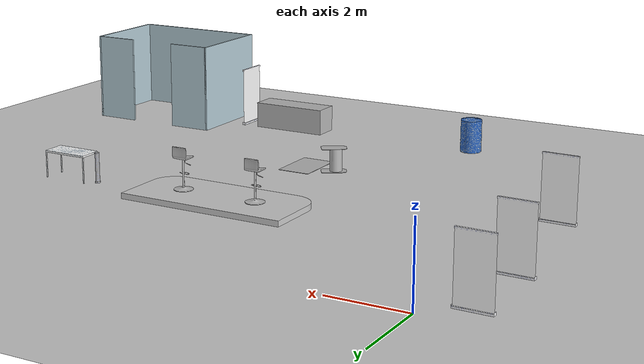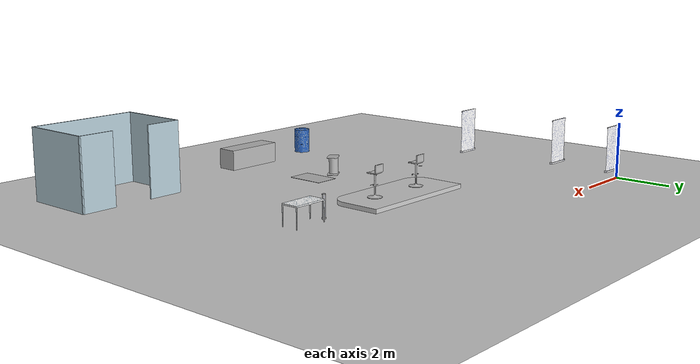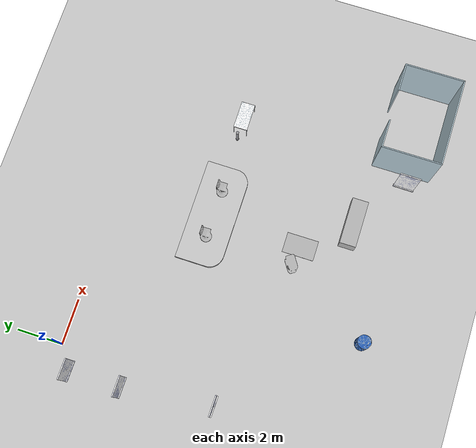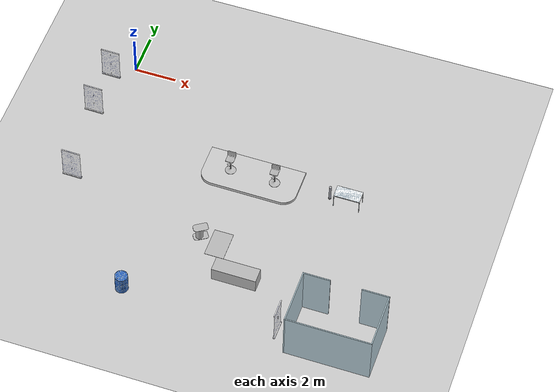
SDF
<sdf version="1.7">
 <world name="default">
  <model name="ground_plane">
   <static>1</static>
   <link name="link">
    <collision name="collision">
     <geometry><plane><normal>0 0 1</normal><size>100 100</size></plane></geometry>
     <surface>
      <contact><collide_bitmask>65535</collide_bitmask></contact>
      <friction><ode><mu>100</mu><mu2>50</mu2></ode></friction>
     </surface>
    </collision>
    <visual name="visual">
     <cast_shadows>0</cast_shadows>
     <geometry><plane><normal>0 0 1</normal><size>100 100</size></plane></geometry>
     <material>
      <script><uri>file://media/materials/scripts/gazebo.material</uri><name>Gazebo/Grey</name></script>
     </material>
    </visual>
   </link>
  </model>
  <model name="plate_9">
   <static>1</static>
   <link name="link">
    <collision name="collision"><geometry><box><size>0.0 0.0 0.0</size></box></geometry></collision>
    <visual name="visual">
     <geometry><box><size>0.9 1.4 0.01</size></box></geometry>
     <material>
      <lighting>1</lighting>
      <script>
       <uri>model://plate_8/materials/scripts</uri>
       <uri>model://plate_8/materials/textures</uri>
       <name>plateby</name>
      </script>
     </material>
    </visual>
   </link>
   <pose>7.1 -8.35 0 0 -0 0</pose>
  </model>
  <model name="LogCam1">
   <link name="link">
    <sensor name="logical_camera" type="logical_camera">
     <logical_camera>
      <near>0.55</near>
      <far>2.5</far>
      <horizontal_fov>1.05</horizontal_fov>
      <aspect_ratio>1.8</aspect_ratio>
     </logical_camera>
     <visualize>1</visualize>
     <always_on>1</always_on>
     <update_rate>10</update_rate>
    </sensor>
   </link>
   <static>1</static>
   <pose>7.11 -10 0.2 0 -0 1.570335</pose>
  </model>
  <model name="banner_0_clone_clone">
   <static>1</static>
   <link name="link">
    <collision name="collision">
     <geometry><mesh><scale>1 1.5 1</scale><uri>model://banner/meshes/banner.dae</uri></mesh></geometry>
    </collision>
    <visual name="visual">
     <geometry><mesh><scale>1 1.5 1</scale><uri>model://banner/meshes/banner.dae</uri></mesh></geometry>
     <material>
      <script>
       <uri>model://banner/materials/scripts</uri>
       <uri>model://banner/materials/textures</uri>
       <name>FlipChart/Diffuse</name>
      </script>
     </material>
    </visual>
   </link>
   <pose>0.462758 -7.43082 0 0 -0 1.55209</pose>
  </model>
  <model name="whitetablesmall_1_clone_0">
   <static>1</static>
   <link name="link">
    <collision name="collision">
     <geometry>
      <mesh><scale>0.5 0.5 0.9</scale><uri>model://whitetablesmall/meshes/whitetable.dae</uri></mesh>
     </geometry>
    </collision>
    <visual name="visual">
     <geometry>
      <mesh><scale>0.5 0.5 0.9</scale><uri>model://whitetablesmall/meshes/whitetable.dae</uri></mesh>
     </geometry>
     <material>
      <script>
       <uri>model://flipchart/materials/scripts</uri>
       <uri>model://flipchart/materials/textures</uri>
       <name>FlipChart/Diffuse</name>
      </script>
     </material>
    </visual>
   </link>
   <pose>11.8 -4.3 0 0 -0 1.57294</pose>
  </model>
  <model name="banner_0_clone_clone_clone">
   <static>1</static>
   <link name="link">
    <collision name="collision">
     <geometry><mesh><scale>1 1.5 1</scale><uri>model://banner/meshes/banner.dae</uri></mesh></geometry>
    </collision>
    <visual name="visual">
     <geometry><mesh><scale>1 1.5 1</scale><uri>model://banner/meshes/banner.dae</uri></mesh></geometry>
     <material>
      <script>
       <uri>model://banner/materials/scripts</uri>
       <uri>model://banner/materials/textures</uri>
       <name>FlipChart/Diffuse</name>
      </script>
     </material>
    </visual>
   </link>
   <pose>0.026844 -3.53741 0 0 -0 1.55209</pose>
  </model>
  <model name="banner_0_clone_clone_clone_1">
   <static>1</static>
   <link name="link">
    <collision name="collision">
     <geometry><mesh><scale>1 1.5 1</scale><uri>model://banner/meshes/banner.dae</uri></mesh></geometry>
    </collision>
    <visual name="visual">
     <geometry><mesh><scale>1 1.5 1</scale><uri>model://banner/meshes/banner.dae</uri></mesh></geometry>
     <material>
      <script>
       <uri>model://banner/materials/scripts</uri>
       <uri>model://banner/materials/textures</uri>
       <name>FlipChart/Diffuse</name>
      </script>
     </material>
    </visual>
   </link>
   <pose>0.003173 -1.24572 0 0 -0 1.55209</pose>
  </model>
  <model name="barboden">
   <static>1</static>
   <link name="link">
    <collision name="collision">
     <geometry><mesh><scale>1.1 1 1</scale><uri>model://barboden/meshes/barboden.dae</uri></mesh></geometry>
    </collision>
    <visual name="visual">
     <geometry><mesh><scale>1.1 1 1</scale><uri>model://barboden/meshes/barboden.dae</uri></mesh></geometry>
    </visual>
   </link>
   <pose>7.26674 -4.33489 0 0 -0 3.13614</pose>
  </model>
  <model name="barchair">
   <static>1</static>
   <link name="link">
    <collision name="collision">
     <geometry><mesh><scale>1 1 1</scale><uri>model://barchair/meshes/barchair.dae</uri></mesh></geometry>
    </collision>
    <visual name="visual">
     <geometry><mesh><scale>1 1 1</scale><uri>model://barchair/meshes/barchair.dae</uri></mesh></geometry>
     <material>
      <script>
       <uri>model://flipchart/materials/scripts</uri>
       <uri>model://flipchart/materials/textures</uri>
       <name>FlipChart/Diffuse</name>
      </script>
     </material>
    </visual>
   </link>
   <pose>6.24772 -4.32501 0.169593 0 -0 0</pose>
  </model>
  <model name="barchair_clone">
   <static>1</static>
   <link name="link">
    <collision name="collision">
     <geometry><mesh><scale>1 1 1</scale><uri>model://barchair/meshes/barchair.dae</uri></mesh></geometry>
    </collision>
    <visual name="visual">
     <geometry><mesh><scale>1 1 1</scale><uri>model://barchair/meshes/barchair.dae</uri></mesh></geometry>
     <material>
      <script>
       <uri>model://flipchart/materials/scripts</uri>
       <uri>model://flipchart/materials/textures</uri>
       <name>FlipChart/Diffuse</name>
      </script>
     </material>
    </visual>
   </link>
   <pose>8.37245 -4.37397 0.169593 0 -0 0</pose>
  </model>
  <model name="pillar_clone">
   <static>1</static>
   <link name="link">
    <collision name="collision">
     <geometry><mesh><scale>0.3 0.3 0.16</scale><uri>model://pillar/meshes/pillar.dae</uri></mesh></geometry>
    </collision>
    <visual name="visual">
     <geometry><mesh><scale>0.3 0.3 0.16</scale><uri>model://pillar/meshes/pillar.dae</uri></mesh></geometry>
    </visual>
   </link>
   <pose>10.9097 -4.31342 0 0 -0 0</pose>
  </model>
  <model name="IGM_Zelle">
   <pose>13.551 -11.602 0 0 -0 0</pose>
   <link name="Wall_11">
    <collision name="Wall_11_Collision">
     <geometry><box><size>1.25 0.05 2.5</size></box></geometry>
     <pose>0 0 1.25 0 -0 0</pose>
    </collision>
    <visual name="Wall_11_Visual">
     <pose>0 0 1.25 0 -0 0</pose>
     <geometry><box><size>1.25 0.05 2.5</size></box></geometry>
     <material>
      <script><uri>file://media/materials/scripts/gazebo.material</uri><name>Gazebo/Grey</name></script>
      <ambient>0.713726 0.807843 0.847059 1</ambient>
     </material>
     <meta><layer>0</layer></meta>
    </visual>
    <pose>1.325 1.275 0 0 -0 3.14159</pose>
   </link>
   <link name="Wall_3">
    <collision name="Wall_3_Collision">
     <geometry><box><size>3.89952 0.05 2.5</size></box></geometry>
     <pose>0 0 1.25 0 -0 0</pose>
    </collision>
    <visual name="Wall_3_Visual">
     <pose>0 0 1.25 0 -0 0</pose>
     <geometry><box><size>3.89952 0.05 2.5</size></box></geometry>
     <material>
      <script><uri>file://media/materials/scripts/gazebo.material</uri><name>Gazebo/Grey</name></script>
      <ambient>0.713726 0.807843 0.847059 1</ambient>
     </material>
     <meta><layer>0</layer></meta>
    </visual>
    <pose>-0 -1.275 0 0 -0 3.14159</pose>
   </link>
   <link name="Wall_5">
    <collision name="Wall_5_Collision">
     <geometry><box><size>2.6 0.05 2.5</size></box></geometry>
     <pose>0 0 1.25 0 -0 0</pose>
    </collision>
    <visual name="Wall_5_Visual">
     <pose>0 0 1.25 0 -0 0</pose>
     <geometry><box><size>2.6 0.05 2.5</size></box></geometry>
     <material>
      <script><uri>file://media/materials/scripts/gazebo.material</uri><name>Gazebo/Grey</name></script>
      <ambient>0.713726 0.807843 0.847059 1</ambient>
     </material>
     <meta><layer>0</layer></meta>
    </visual>
    <pose>-1.925 0 0 0 -0 1.5708</pose>
   </link>
   <link name="Wall_7">
    <collision name="Wall_7_Collision">
     <geometry><box><size>2.6 0.05 2.5</size></box></geometry>
     <pose>0 0 1.25 0 -0 0</pose>
    </collision>
    <visual name="Wall_7_Visual">
     <pose>0 0 1.25 0 -0 0</pose>
     <geometry><box><size>2.6 0.05 2.5</size></box></geometry>
     <material>
      <script><uri>file://media/materials/scripts/gazebo.material</uri><name>Gazebo/Grey</name></script>
      <ambient>0.713726 0.807843 0.847059 1</ambient>
     </material>
     <meta><layer>0</layer></meta>
    </visual>
    <pose>1.925 0 0 0 -0 1.5708</pose>
   </link>
   <link name="Wall_9">
    <collision name="Wall_9_Collision">
     <geometry><box><size>1.25 0.05 2.5</size></box></geometry>
     <pose>0 0 1.25 0 -0 0</pose>
    </collision>
    <visual name="Wall_9_Visual">
     <pose>0 0 1.25 0 -0 0</pose>
     <geometry><box><size>1.25 0.05 2.5</size></box></geometry>
     <material>
      <script><uri>file://media/materials/scripts/gazebo.material</uri><name>Gazebo/Grey</name></script>
      <ambient>0.713726 0.807843 0.847059 1</ambient>
     </material>
     <meta><layer>0</layer></meta>
    </visual>
    <pose>-1.325 1.275 0 0 -0 0</pose>
   </link>
   <static>1</static>
  </model>
  <model name="stand">
   <static>1</static>
   <link name="link">
    <collision name="collision">
     <geometry><mesh><scale>0.2 0.2 0.2</scale><uri>model://stand/meshes/stand.dae</uri></mesh></geometry>
    </collision>
    <visual name="visual">
     <geometry><mesh><scale>0.2 0.2 0.2</scale><uri>model://stand/meshes/stand.dae</uri></mesh></geometry>
     <material>
      <script>
       <uri>model://stand/materials/scripts</uri>
       <uri>model://stand/materials/textures</uri>
       <name>black/Diffuse</name>
      </script>
     </material>
    </visual>
   </link>
   <pose>6.17316 -8.19936 0.022688 0 -0 0.583627</pose>
  </model>
  <model name="loader">
   <static>1</static>
   <link name="link">
    <collision name="collision">
     <geometry><mesh><scale>0.35 0.35 0.35</scale><uri>model://loader/meshes/loader.dae</uri></mesh></geometry>
    </collision>
    <visual name="visual">
     <geometry><mesh><scale>0.35 0.35 0.35</scale><uri>model://loader/meshes/loader.dae</uri></mesh></geometry>
     <material>
      <script>
       <uri>model://loader/materials/scripts</uri>
       <uri>model://loader/materials/textures</uri>
       <name>red/Diffuse</name>
      </script>
     </material>
    </visual>
   </link>
   <pose>8.53151 -10.205 0.489817 0 -0 0</pose>
  </model>
  <model name="barrel_clone_0_clone_0_clone">
   <static>1</static>
   <link name="link">
    <collision name="collision">
     <geometry><mesh><scale>1 1 1</scale><uri>model://barrel/meshes/barrel.dae</uri></mesh></geometry>
    </collision>
    <visual name="visual">
     <geometry><mesh><scale>1 1 1</scale><uri>model://barrel/meshes/barrel.dae</uri></mesh></geometry>
    </visual>
   </link>
   <pose>3.55965 -12.3056 0 0 -0 0</pose>
  </model>
  <model name="banner_0_clone_clone_0_clone_2_clone_0_clone">
   <static>1</static>
   <link name="link">
    <collision name="collision">
     <geometry><mesh><scale>1 1.5 1</scale><uri>model://banner/meshes/banner.dae</uri></mesh></geometry>
    </collision>
    <visual name="visual">
     <geometry><mesh><scale>1 1.5 1</scale><uri>model://banner/meshes/banner.dae</uri></mesh></geometry>
     <material>
      <script>
       <uri>model://banner/materials/scripts</uri>
       <uri>model://banner/materials/textures</uri>
       <name>FlipChart/Diffuse</name>
      </script>
     </material>
    </visual>
   </link>
   <pose>11.5594 -10.9328 0 0 -0 3.13166</pose>
  </model>
 </world>
</sdf>
